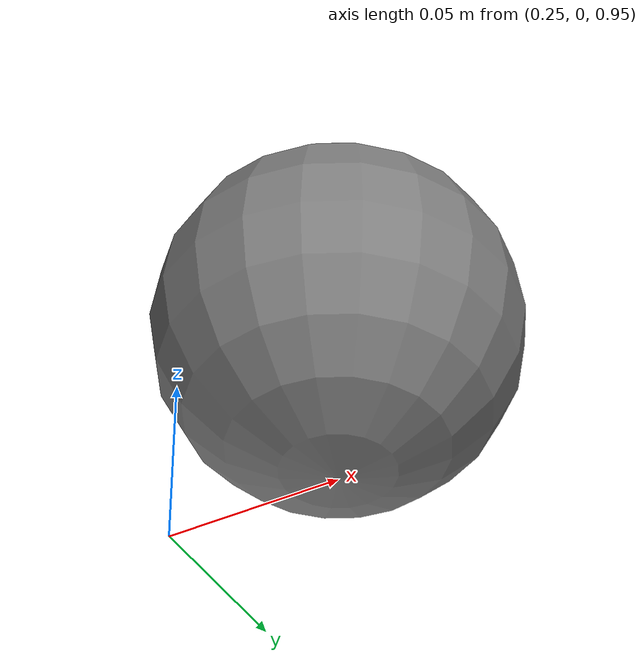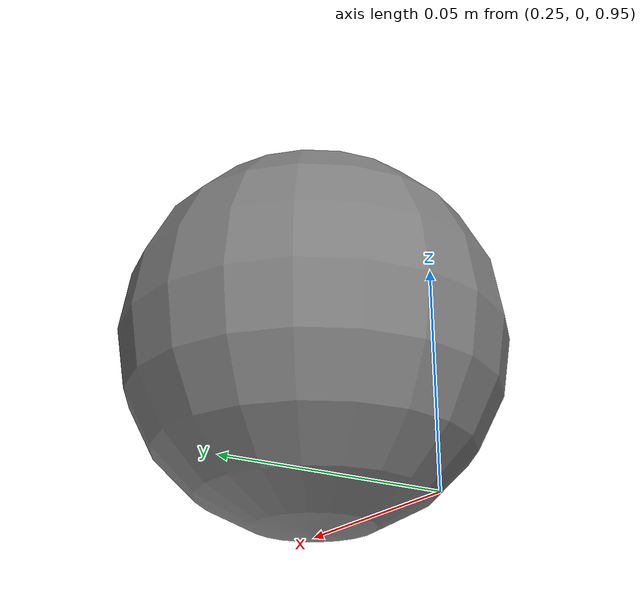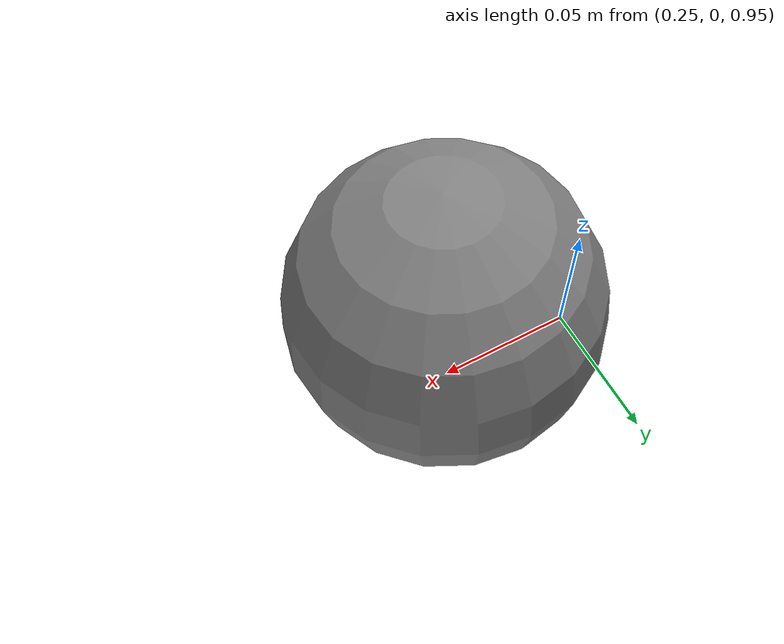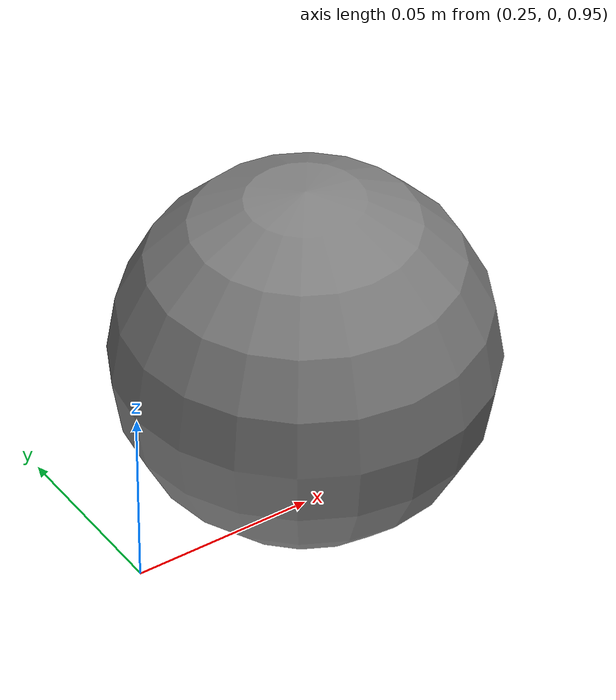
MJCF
<mujoco model="t06">
            <worldbody>
                <body name="b1" pos="0 0 1">
                    <joint type="free"/>
                    <geom type="sphere" size="0.05" pos="0.3 0 0" mass="1"/>
                </body>
            </worldbody>
            <sensor>
                <framepos name="fp_body" objtype="body" objname="b1"/>
                <framepos name="fp_xbody" objtype="xbody" objname="b1"/>
            </sensor>
        </mujoco>
